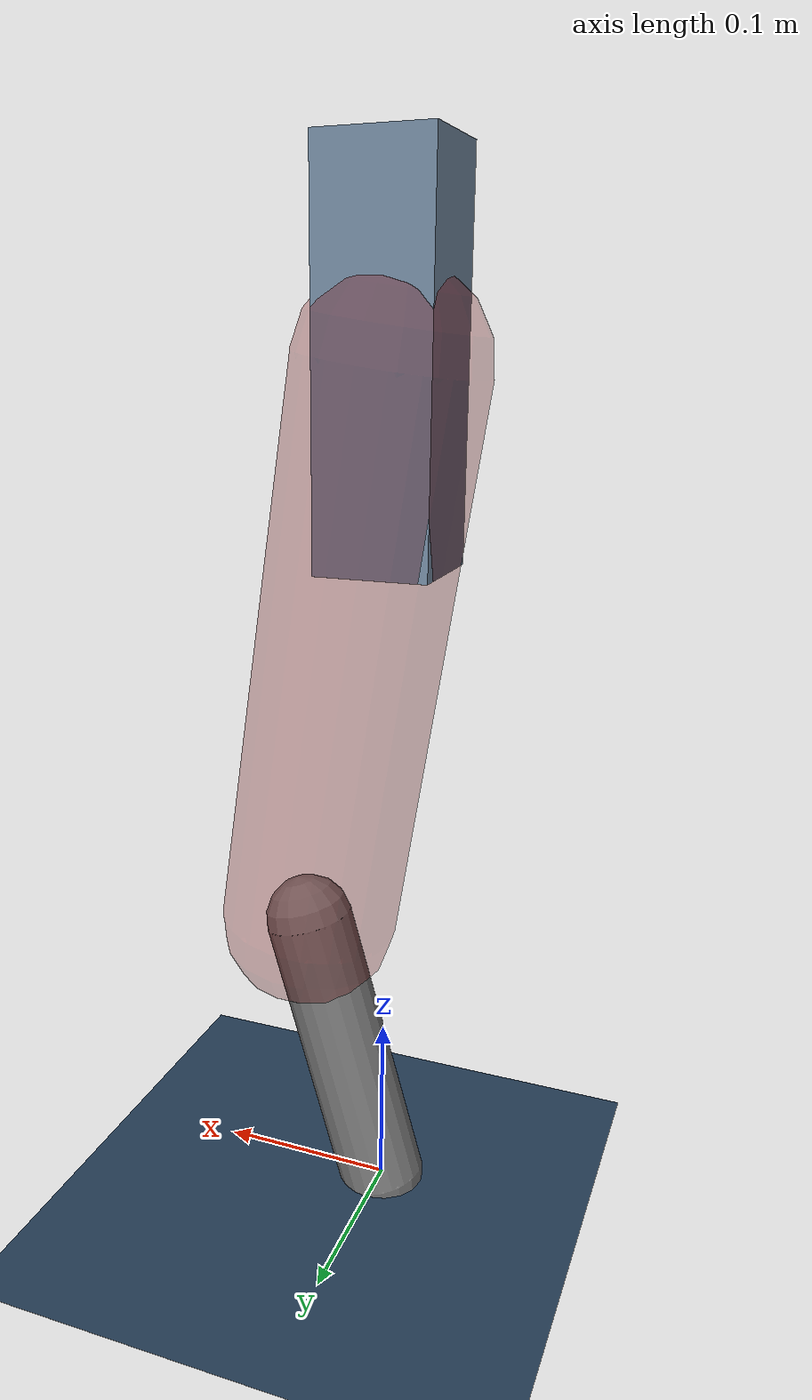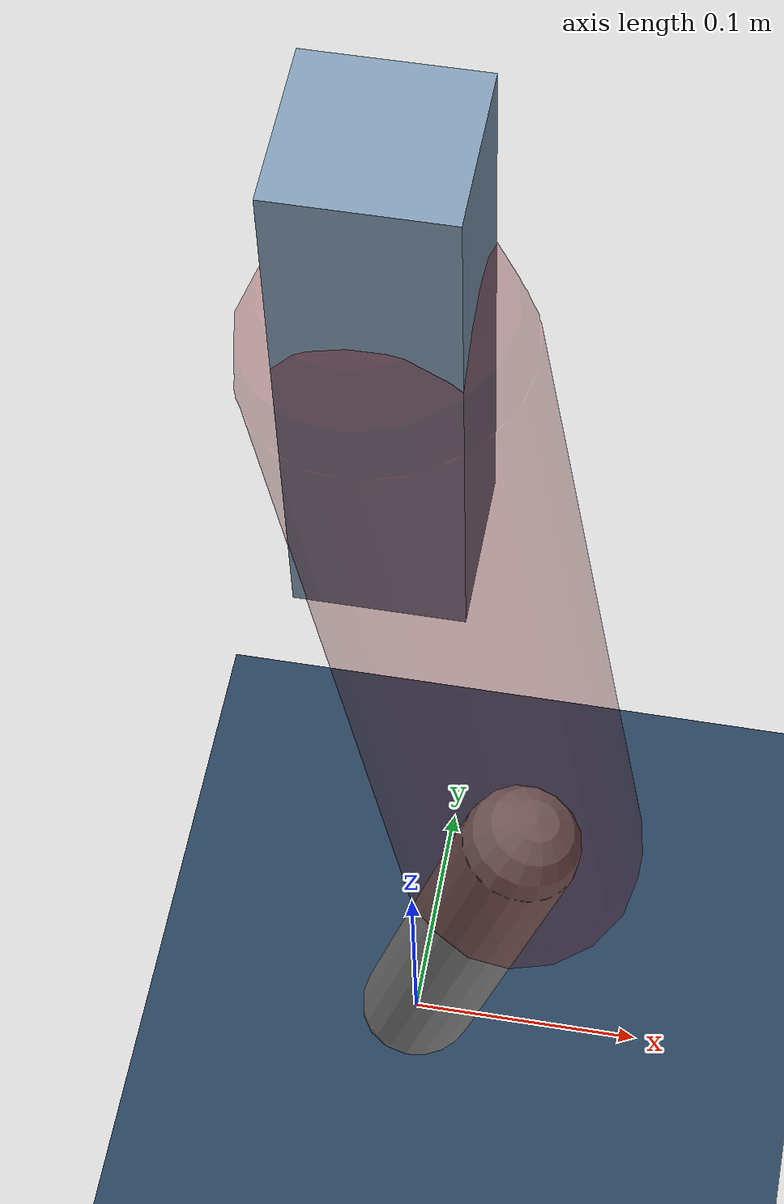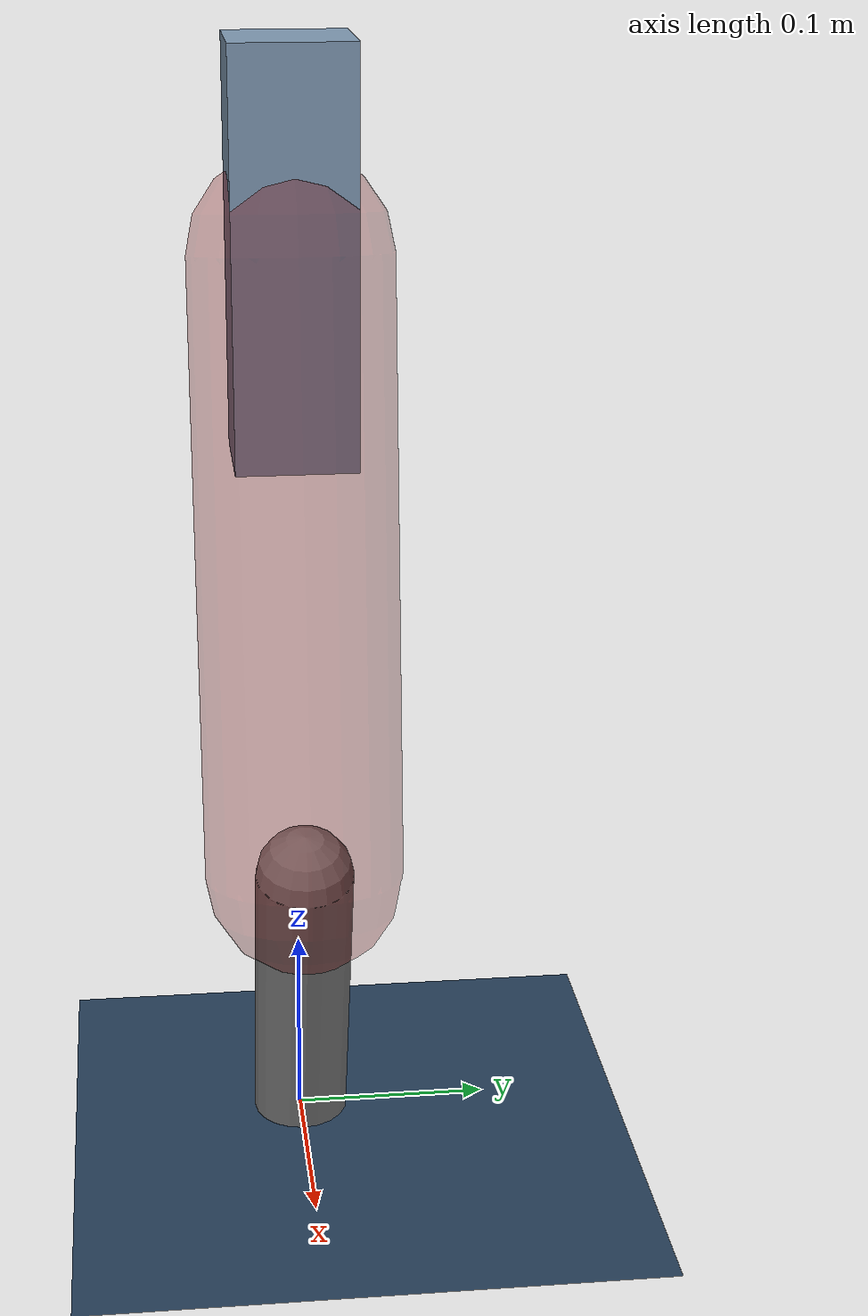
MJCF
<mujoco model="Hopper2D">
	<compiler inertiafromgeom="true" angle="radian" />
	<option timestep="0.001" integrator="implicit" cone="elliptic" solver="Newton" tolerance="1e-10" />

	<default>
		<geom contype="1" conaffinity="1" condim="3" friction="2 0.005 0.0001" solref="0.005 1" />
		<joint limited="true" damping="0.1" />
	</default>

	<asset>
		<texture name="skybox" type="skybox" builtin="gradient" rgb1=".4 .6 .8" rgb2="0 0 0" width="800" height="800" />
		<texture name="grid" type="2d" builtin="checker" rgb1=".1 .2 .3" rgb2=".2 .3 .4" width="300" height="300" mark="edge" markrgb=".2 .3 .4" />
		<material name="ground" texture="grid" texrepeat="1 1" texuniform="true" reflectance="0.1" />
		<material name="leg" rgba="0.5 0.6 0.7 1" />
	</asset>

	<worldbody>

		<geom name="floor" type="plane" size="5 5 0.25" material="ground" />

		<light directional="false" diffuse="0.8 0.8 0.8" specular="0.3 0.3 0.3" pos="0 0 2" dir="0 0 -1" />
		<light mode="targetbodycom" target="base" directional="false" diffuse="0.8 0.8 0.8" specular="0.3 0.3 0.3" pos="0 0 2" dir="0 0 -1" />

		<camera name="fixed" pos="0 -2 1" xyaxes="1 0 0 0 0 1" />
		<camera name="tracking" mode="trackcom" pos="0 -3 1" />

		<body name="root" pos="0 0 0.46723203418492204">
			<joint name="slide_x" type="slide" axis="1 0 0" range="-100 100" />
			<joint name="slide_z" type="slide" axis="0 0 1" range="0 10" />

			<body name="base" pos="0 0 0">
				<geom name="torso" type="box" size="0.03 0.03 0.1" mass="3.436" material="leg" />

				<body name="link1" pos="0 0 0" euler="0 1.4197896838679656 0">
					<joint type="hinge" axis="0 -1 0" pos="0 0 0" name="hinge1" limited="true" range="-3.14 3.14" stiffness="0" damping="0.1" />
					<geom name="thigh" type="capsule" fromto="0 0 0 0.3083051768955643 0 0" size="0.05" rgba="0.5 0 0 0.3" mass="1.0112544953075802" />

					<body name="link2" pos="0.3083051768955643 0 0" euler="0 0.42913156956205567 0">
						<joint type="hinge" axis="0 -1 0" pos="0 0 0" name="hinge2" limited="true" range="-3.14 3.14" stiffness="0" damping="0.1" />
						<geom name="shank" type="capsule" fromto="0 0 0 0.16892685728935775 0 0" size="0.025" mass="0.374334171560422" />

					</body>
				</body>
			</body>
		</body>
	</worldbody>

	<actuator>
		<motor name="torque1" joint="hinge1" ctrlrange="-176.77713183738572 176.77713183738572" ctrllimited="true" gear="1" />
		<motor name="torque2" joint="hinge2" ctrlrange="-81.71300582999055 81.71300582999055" ctrllimited="true" gear="1" />
	</actuator>
</mujoco>
